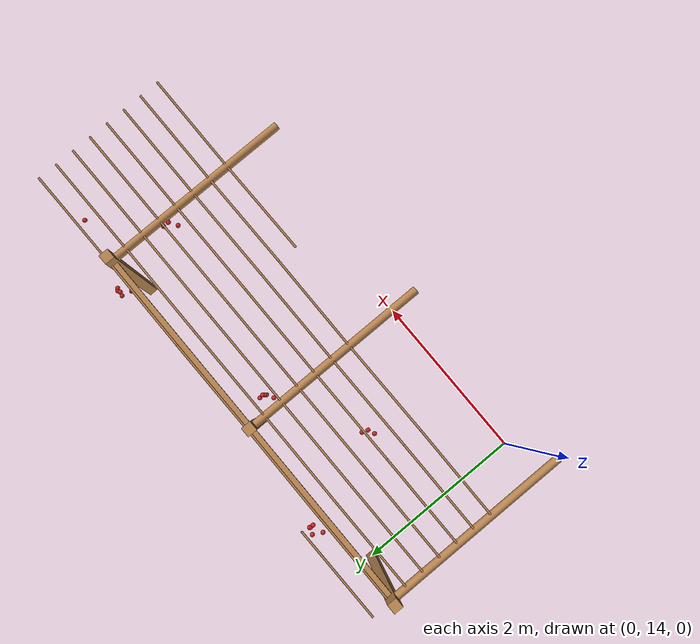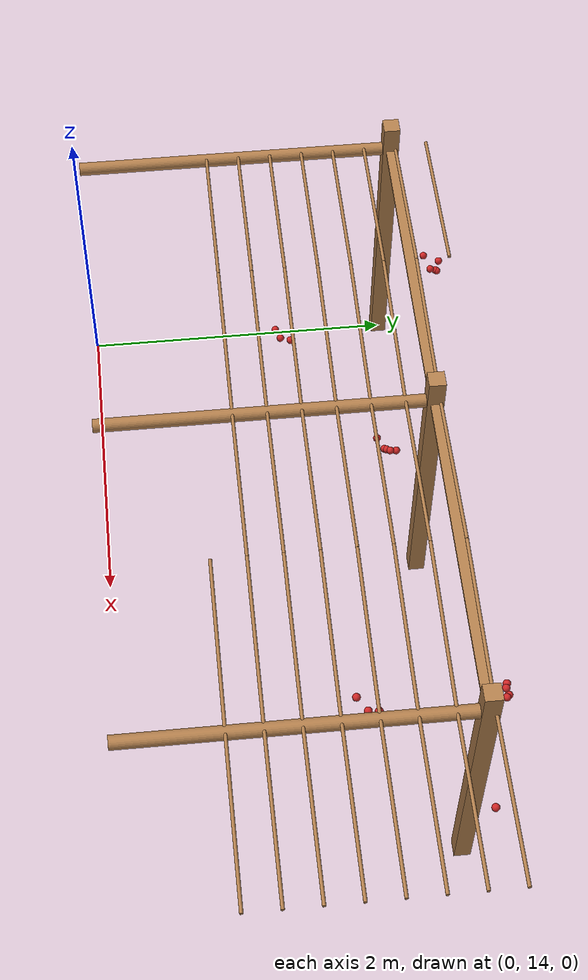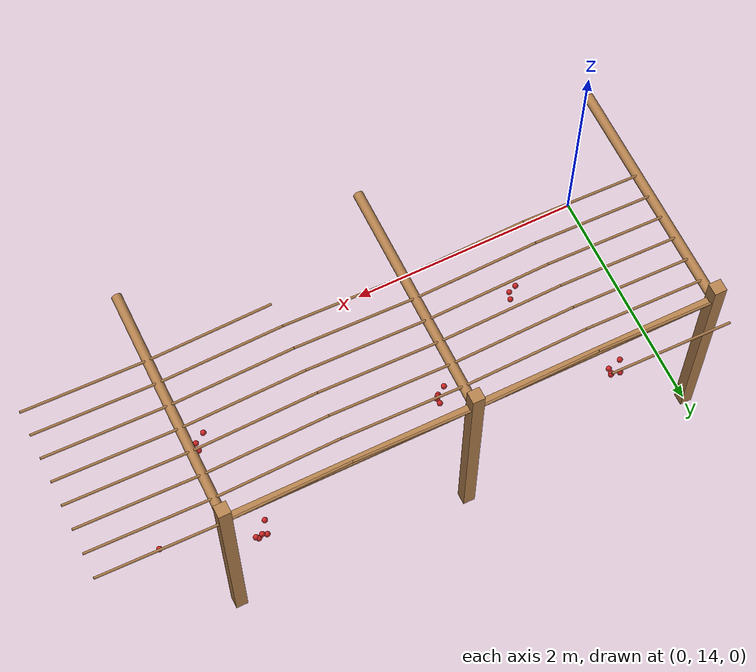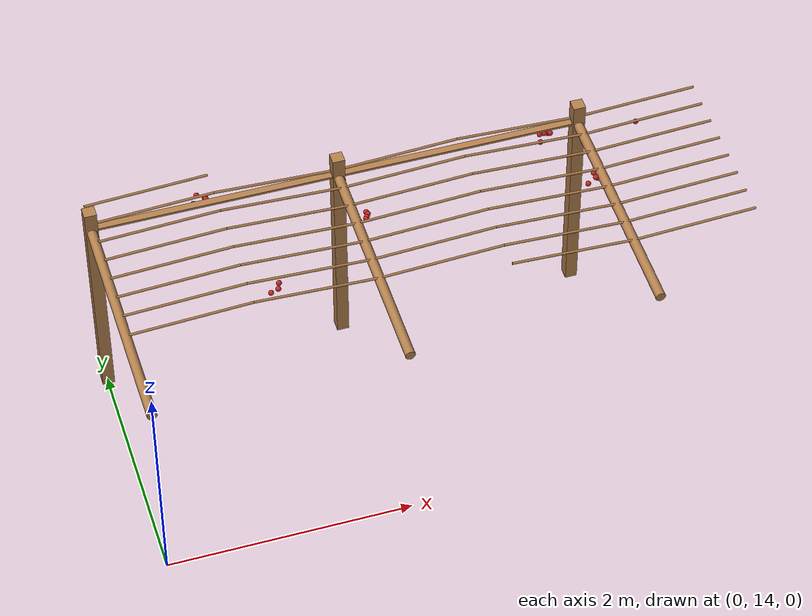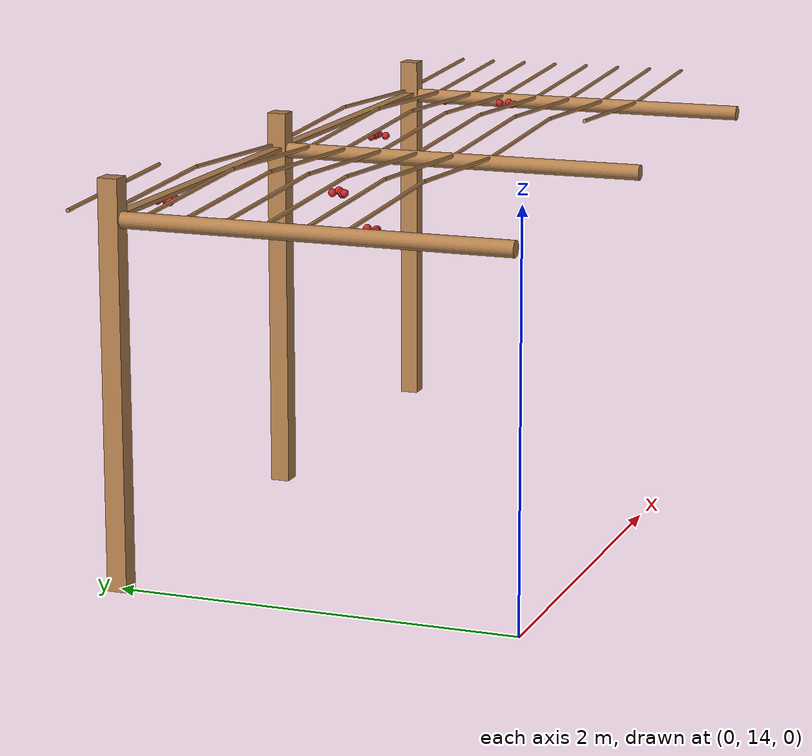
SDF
<sdf version="1.4">
 <model name="pergola">
  <include><name>post_8</name><pose>0.0 16.0 0 0 0 0</pose><uri>model://post</uri></include>
  <include><name>post_19</name><pose>2.0 16.0 0 0 0 0</pose><uri>model://post</uri></include>
  <include><name>post_30</name><pose>4.0 16.0 0 0 0 0</pose><uri>model://post</uri></include>
  <link name="beam_8">
   <pose>1.0 16.0 1.81 0 0 0</pose>
   <collision name="collision"><geometry><box><size>2.0 0.06 0.02</size></box></geometry></collision>
   <visual name="visual">
    <geometry><box><size>2.0 0.06 0.02</size></box></geometry>
    <material><script><name>Gazebo/Wood</name></script></material>
   </visual>
   <inertial>
    <mass>5</mass>
    <inertia>
     <ixx>0.0016666666666666668</ixx>
     <ixy>0.0</ixy>
     <ixz>0.0</ixz>
     <iyy>1.6681666666666664</iyy>
     <iyz>0.0</iyz>
     <izz>1.6668333333333332</izz>
    </inertia>
   </inertial>
  </link>
  <link name="beam_19">
   <pose>3.0 16.0 1.81 0 0 0</pose>
   <collision name="collision"><geometry><box><size>2.0 0.06 0.02</size></box></geometry></collision>
   <visual name="visual">
    <geometry><box><size>2.0 0.06 0.02</size></box></geometry>
    <material><script><name>Gazebo/Wood</name></script></material>
   </visual>
   <inertial>
    <mass>5</mass>
    <inertia>
     <ixx>0.0016666666666666668</ixx>
     <ixy>0.0</ixy>
     <ixz>0.0</ixz>
     <iyy>1.6681666666666664</iyy>
     <iyz>0.0</iyz>
     <izz>1.6668333333333332</izz>
    </inertia>
   </inertial>
  </link>
  <link name="baseBranch_7">
   <pose>0.0 15.0 1.8 1.5707963267948966 0 0</pose>
   <collision name="collision">
    <geometry><cylinder><radius>0.04</radius><length>1.94</length></cylinder></geometry>
   </collision>
   <visual name="visual">
    <geometry><cylinder><radius>0.04</radius><length>1.94</length></cylinder></geometry>
    <material><script><name>Gazebo/WoodFloor</name></script></material>
   </visual>
   <inertial>
    <mass>10</mass>
    <inertia>
     <ixx>3.140333333333333</ixx>
     <ixy>0.0</ixy>
     <ixz>0.0</ixz>
     <iyy>3.140333333333333</iyy>
     <iyz>0.0</iyz>
     <izz>0.008</izz>
    </inertia>
   </inertial>
  </link>
  <link name="baseBranch_17">
   <pose>2.0 15.0 1.8 1.5707963267948966 0 0</pose>
   <collision name="collision">
    <geometry><cylinder><radius>0.04</radius><length>1.94</length></cylinder></geometry>
   </collision>
   <visual name="visual">
    <geometry><cylinder><radius>0.04</radius><length>1.94</length></cylinder></geometry>
    <material><script><name>Gazebo/WoodFloor</name></script></material>
   </visual>
   <inertial>
    <mass>10</mass>
    <inertia>
     <ixx>3.140333333333333</ixx>
     <ixy>0.0</ixy>
     <ixz>0.0</ixz>
     <iyy>3.140333333333333</iyy>
     <iyz>0.0</iyz>
     <izz>0.008</izz>
    </inertia>
   </inertial>
  </link>
  <link name="baseBranch_27">
   <pose>4.0 15.0 1.8 1.5707963267948966 0 0</pose>
   <collision name="collision">
    <geometry><cylinder><radius>0.04</radius><length>1.94</length></cylinder></geometry>
   </collision>
   <visual name="visual">
    <geometry><cylinder><radius>0.04</radius><length>1.94</length></cylinder></geometry>
    <material><script><name>Gazebo/WoodFloor</name></script></material>
   </visual>
   <inertial>
    <mass>10</mass>
    <inertia>
     <ixx>3.140333333333333</ixx>
     <ixy>0.0</ixy>
     <ixz>0.0</ixz>
     <iyy>3.140333333333333</iyy>
     <iyz>0.0</iyz>
     <izz>0.008</izz>
    </inertia>
   </inertial>
  </link>
  <link name="vine_148">
   <pose>0.5 14.83 1.85 0 1.5208379310729538 0</pose>
   <collision name="collision">
    <geometry><cylinder><radius>0.01</radius><length>1.0012492197250393</length></cylinder></geometry>
   </collision>
   <visual name="visual">
    <geometry><cylinder><radius>0.01</radius><length>1.0012492197250393</length></cylinder></geometry>
    <material><script><name>Gazebo/WoodFloor</name></script></material>
   </visual>
   <inertial>
    <mass>5</mass>
    <inertia>
     <ixx>0.41783333333333345</ixx>
     <ixy>0.0</ixy>
     <ixz>0.0</ixz>
     <iyy>0.41783333333333345</iyy>
     <iyz>0.0</iyz>
     <izz>0.00025</izz>
    </inertia>
   </inertial>
  </link>
  <link name="vine_149">
   <pose>1.5 14.83 1.85 0 -1.5208379310729538 0</pose>
   <collision name="collision">
    <geometry><cylinder><radius>0.01</radius><length>1.0012492197250393</length></cylinder></geometry>
   </collision>
   <visual name="visual">
    <geometry><cylinder><radius>0.01</radius><length>1.0012492197250393</length></cylinder></geometry>
    <material><script><name>Gazebo/WoodFloor</name></script></material>
   </visual>
   <inertial>
    <mass>5</mass>
    <inertia>
     <ixx>0.41783333333333345</ixx>
     <ixy>0.0</ixy>
     <ixz>0.0</ixz>
     <iyy>0.41783333333333345</iyy>
     <iyz>0.0</iyz>
     <izz>0.00025</izz>
    </inertia>
   </inertial>
  </link>
  <link name="vine_150">
   <pose>0.5 15.03 1.85 0 1.5208379310729538 0</pose>
   <collision name="collision">
    <geometry><cylinder><radius>0.01</radius><length>1.0012492197250393</length></cylinder></geometry>
   </collision>
   <visual name="visual">
    <geometry><cylinder><radius>0.01</radius><length>1.0012492197250393</length></cylinder></geometry>
    <material><script><name>Gazebo/WoodFloor</name></script></material>
   </visual>
   <inertial>
    <mass>5</mass>
    <inertia>
     <ixx>0.41783333333333345</ixx>
     <ixy>0.0</ixy>
     <ixz>0.0</ixz>
     <iyy>0.41783333333333345</iyy>
     <iyz>0.0</iyz>
     <izz>0.00025</izz>
    </inertia>
   </inertial>
  </link>
  <link name="vine_151">
   <pose>1.5 15.03 1.85 0 -1.5208379310729538 0</pose>
   <collision name="collision">
    <geometry><cylinder><radius>0.01</radius><length>1.0012492197250393</length></cylinder></geometry>
   </collision>
   <visual name="visual">
    <geometry><cylinder><radius>0.01</radius><length>1.0012492197250393</length></cylinder></geometry>
    <material><script><name>Gazebo/WoodFloor</name></script></material>
   </visual>
   <inertial>
    <mass>5</mass>
    <inertia>
     <ixx>0.41783333333333345</ixx>
     <ixy>0.0</ixy>
     <ixz>0.0</ixz>
     <iyy>0.41783333333333345</iyy>
     <iyz>0.0</iyz>
     <izz>0.00025</izz>
    </inertia>
   </inertial>
  </link>
  <link name="vine_152">
   <pose>0.5 15.23 1.85 0 1.5208379310729538 0</pose>
   <collision name="collision">
    <geometry><cylinder><radius>0.01</radius><length>1.0012492197250393</length></cylinder></geometry>
   </collision>
   <visual name="visual">
    <geometry><cylinder><radius>0.01</radius><length>1.0012492197250393</length></cylinder></geometry>
    <material><script><name>Gazebo/WoodFloor</name></script></material>
   </visual>
   <inertial>
    <mass>5</mass>
    <inertia>
     <ixx>0.41783333333333345</ixx>
     <ixy>0.0</ixy>
     <ixz>0.0</ixz>
     <iyy>0.41783333333333345</iyy>
     <iyz>0.0</iyz>
     <izz>0.00025</izz>
    </inertia>
   </inertial>
  </link>
  <link name="vine_153">
   <pose>1.5 15.23 1.85 0 -1.5208379310729538 0</pose>
   <collision name="collision">
    <geometry><cylinder><radius>0.01</radius><length>1.0012492197250393</length></cylinder></geometry>
   </collision>
   <visual name="visual">
    <geometry><cylinder><radius>0.01</radius><length>1.0012492197250393</length></cylinder></geometry>
    <material><script><name>Gazebo/WoodFloor</name></script></material>
   </visual>
   <inertial>
    <mass>5</mass>
    <inertia>
     <ixx>0.41783333333333345</ixx>
     <ixy>0.0</ixy>
     <ixz>0.0</ixz>
     <iyy>0.41783333333333345</iyy>
     <iyz>0.0</iyz>
     <izz>0.00025</izz>
    </inertia>
   </inertial>
  </link>
  <link name="vine_154">
   <pose>0.5 15.43 1.85 0 1.5208379310729538 0</pose>
   <collision name="collision">
    <geometry><cylinder><radius>0.01</radius><length>1.0012492197250393</length></cylinder></geometry>
   </collision>
   <visual name="visual">
    <geometry><cylinder><radius>0.01</radius><length>1.0012492197250393</length></cylinder></geometry>
    <material><script><name>Gazebo/WoodFloor</name></script></material>
   </visual>
   <inertial>
    <mass>5</mass>
    <inertia>
     <ixx>0.41783333333333345</ixx>
     <ixy>0.0</ixy>
     <ixz>0.0</ixz>
     <iyy>0.41783333333333345</iyy>
     <iyz>0.0</iyz>
     <izz>0.00025</izz>
    </inertia>
   </inertial>
  </link>
  <link name="vine_155">
   <pose>1.5 15.43 1.85 0 -1.5208379310729538 0</pose>
   <collision name="collision">
    <geometry><cylinder><radius>0.01</radius><length>1.0012492197250393</length></cylinder></geometry>
   </collision>
   <visual name="visual">
    <geometry><cylinder><radius>0.01</radius><length>1.0012492197250393</length></cylinder></geometry>
    <material><script><name>Gazebo/WoodFloor</name></script></material>
   </visual>
   <inertial>
    <mass>5</mass>
    <inertia>
     <ixx>0.41783333333333345</ixx>
     <ixy>0.0</ixy>
     <ixz>0.0</ixz>
     <iyy>0.41783333333333345</iyy>
     <iyz>0.0</iyz>
     <izz>0.00025</izz>
    </inertia>
   </inertial>
  </link>
  <link name="vine_156">
   <pose>0.5 15.63 1.85 0 1.5208379310729538 0</pose>
   <collision name="collision">
    <geometry><cylinder><radius>0.01</radius><length>1.0012492197250393</length></cylinder></geometry>
   </collision>
   <visual name="visual">
    <geometry><cylinder><radius>0.01</radius><length>1.0012492197250393</length></cylinder></geometry>
    <material><script><name>Gazebo/WoodFloor</name></script></material>
   </visual>
   <inertial>
    <mass>5</mass>
    <inertia>
     <ixx>0.41783333333333345</ixx>
     <ixy>0.0</ixy>
     <ixz>0.0</ixz>
     <iyy>0.41783333333333345</iyy>
     <iyz>0.0</iyz>
     <izz>0.00025</izz>
    </inertia>
   </inertial>
  </link>
  <link name="vine_157">
   <pose>1.5 15.63 1.85 0 -1.5208379310729538 0</pose>
   <collision name="collision">
    <geometry><cylinder><radius>0.01</radius><length>1.0012492197250393</length></cylinder></geometry>
   </collision>
   <visual name="visual">
    <geometry><cylinder><radius>0.01</radius><length>1.0012492197250393</length></cylinder></geometry>
    <material><script><name>Gazebo/WoodFloor</name></script></material>
   </visual>
   <inertial>
    <mass>5</mass>
    <inertia>
     <ixx>0.41783333333333345</ixx>
     <ixy>0.0</ixy>
     <ixz>0.0</ixz>
     <iyy>0.41783333333333345</iyy>
     <iyz>0.0</iyz>
     <izz>0.00025</izz>
    </inertia>
   </inertial>
  </link>
  <link name="vine_158">
   <pose>0.5 15.83 1.85 0 1.5208379310729538 0</pose>
   <collision name="collision">
    <geometry><cylinder><radius>0.01</radius><length>1.0012492197250393</length></cylinder></geometry>
   </collision>
   <visual name="visual">
    <geometry><cylinder><radius>0.01</radius><length>1.0012492197250393</length></cylinder></geometry>
    <material><script><name>Gazebo/WoodFloor</name></script></material>
   </visual>
   <inertial>
    <mass>5</mass>
    <inertia>
     <ixx>0.41783333333333345</ixx>
     <ixy>0.0</ixy>
     <ixz>0.0</ixz>
     <iyy>0.41783333333333345</iyy>
     <iyz>0.0</iyz>
     <izz>0.00025</izz>
    </inertia>
   </inertial>
  </link>
  <link name="vine_159">
   <pose>1.5 15.83 1.85 0 -1.5208379310729538 0</pose>
   <collision name="collision">
    <geometry><cylinder><radius>0.01</radius><length>1.0012492197250393</length></cylinder></geometry>
   </collision>
   <visual name="visual">
    <geometry><cylinder><radius>0.01</radius><length>1.0012492197250393</length></cylinder></geometry>
    <material><script><name>Gazebo/WoodFloor</name></script></material>
   </visual>
   <inertial>
    <mass>5</mass>
    <inertia>
     <ixx>0.41783333333333345</ixx>
     <ixy>0.0</ixy>
     <ixz>0.0</ixz>
     <iyy>0.41783333333333345</iyy>
     <iyz>0.0</iyz>
     <izz>0.00025</izz>
    </inertia>
   </inertial>
  </link>
  <link name="vine_160">
   <pose>0.5 16.03 1.85 0 1.5208379310729538 0</pose>
   <collision name="collision">
    <geometry><cylinder><radius>0.01</radius><length>1.0012492197250393</length></cylinder></geometry>
   </collision>
   <visual name="visual">
    <geometry><cylinder><radius>0.01</radius><length>1.0012492197250393</length></cylinder></geometry>
    <material><script><name>Gazebo/WoodFloor</name></script></material>
   </visual>
   <inertial>
    <mass>5</mass>
    <inertia>
     <ixx>0.41783333333333345</ixx>
     <ixy>0.0</ixy>
     <ixz>0.0</ixz>
     <iyy>0.41783333333333345</iyy>
     <iyz>0.0</iyz>
     <izz>0.00025</izz>
    </inertia>
   </inertial>
  </link>
  <link name="vine_161">
   <pose>1.5 16.03 1.85 0 -1.5208379310729538 0</pose>
   <collision name="collision">
    <geometry><cylinder><radius>0.01</radius><length>1.0012492197250393</length></cylinder></geometry>
   </collision>
   <visual name="visual">
    <geometry><cylinder><radius>0.01</radius><length>1.0012492197250393</length></cylinder></geometry>
    <material><script><name>Gazebo/WoodFloor</name></script></material>
   </visual>
   <inertial>
    <mass>5</mass>
    <inertia>
     <ixx>0.41783333333333345</ixx>
     <ixy>0.0</ixy>
     <ixz>0.0</ixz>
     <iyy>0.41783333333333345</iyy>
     <iyz>0.0</iyz>
     <izz>0.00025</izz>
    </inertia>
   </inertial>
  </link>
  <link name="vine_162">
   <pose>0.5 16.23 1.85 0 1.5208379310729538 0</pose>
   <collision name="collision">
    <geometry><cylinder><radius>0.01</radius><length>1.0012492197250393</length></cylinder></geometry>
   </collision>
   <visual name="visual">
    <geometry><cylinder><radius>0.01</radius><length>1.0012492197250393</length></cylinder></geometry>
    <material><script><name>Gazebo/WoodFloor</name></script></material>
   </visual>
   <inertial>
    <mass>5</mass>
    <inertia>
     <ixx>0.41783333333333345</ixx>
     <ixy>0.0</ixy>
     <ixz>0.0</ixz>
     <iyy>0.41783333333333345</iyy>
     <iyz>0.0</iyz>
     <izz>0.00025</izz>
    </inertia>
   </inertial>
  </link>
  <link name="vine_347">
   <pose>3.5 14.63 1.85 0 -1.5208379310729538 0</pose>
   <collision name="collision">
    <geometry><cylinder><radius>0.01</radius><length>1.0012492197250393</length></cylinder></geometry>
   </collision>
   <visual name="visual">
    <geometry><cylinder><radius>0.01</radius><length>1.0012492197250393</length></cylinder></geometry>
    <material><script><name>Gazebo/WoodFloor</name></script></material>
   </visual>
   <inertial>
    <mass>5</mass>
    <inertia>
     <ixx>0.41783333333333345</ixx>
     <ixy>0.0</ixy>
     <ixz>0.0</ixz>
     <iyy>0.41783333333333345</iyy>
     <iyz>0.0</iyz>
     <izz>0.00025</izz>
    </inertia>
   </inertial>
  </link>
  <link name="vine_348">
   <pose>2.5 14.83 1.85 0 1.5208379310729538 0</pose>
   <collision name="collision">
    <geometry><cylinder><radius>0.01</radius><length>1.0012492197250393</length></cylinder></geometry>
   </collision>
   <visual name="visual">
    <geometry><cylinder><radius>0.01</radius><length>1.0012492197250393</length></cylinder></geometry>
    <material><script><name>Gazebo/WoodFloor</name></script></material>
   </visual>
   <inertial>
    <mass>5</mass>
    <inertia>
     <ixx>0.41783333333333345</ixx>
     <ixy>0.0</ixy>
     <ixz>0.0</ixz>
     <iyy>0.41783333333333345</iyy>
     <iyz>0.0</iyz>
     <izz>0.00025</izz>
    </inertia>
   </inertial>
  </link>
  <link name="vine_349">
   <pose>3.5 14.83 1.85 0 -1.5208379310729538 0</pose>
   <collision name="collision">
    <geometry><cylinder><radius>0.01</radius><length>1.0012492197250393</length></cylinder></geometry>
   </collision>
   <visual name="visual">
    <geometry><cylinder><radius>0.01</radius><length>1.0012492197250393</length></cylinder></geometry>
    <material><script><name>Gazebo/WoodFloor</name></script></material>
   </visual>
   <inertial>
    <mass>5</mass>
    <inertia>
     <ixx>0.41783333333333345</ixx>
     <ixy>0.0</ixy>
     <ixz>0.0</ixz>
     <iyy>0.41783333333333345</iyy>
     <iyz>0.0</iyz>
     <izz>0.00025</izz>
    </inertia>
   </inertial>
  </link>
  <link name="vine_350">
   <pose>2.5 15.03 1.85 0 1.5208379310729538 0</pose>
   <collision name="collision">
    <geometry><cylinder><radius>0.01</radius><length>1.0012492197250393</length></cylinder></geometry>
   </collision>
   <visual name="visual">
    <geometry><cylinder><radius>0.01</radius><length>1.0012492197250393</length></cylinder></geometry>
    <material><script><name>Gazebo/WoodFloor</name></script></material>
   </visual>
   <inertial>
    <mass>5</mass>
    <inertia>
     <ixx>0.41783333333333345</ixx>
     <ixy>0.0</ixy>
     <ixz>0.0</ixz>
     <iyy>0.41783333333333345</iyy>
     <iyz>0.0</iyz>
     <izz>0.00025</izz>
    </inertia>
   </inertial>
  </link>
  <link name="vine_351">
   <pose>3.5 15.03 1.85 0 -1.5208379310729538 0</pose>
   <collision name="collision">
    <geometry><cylinder><radius>0.01</radius><length>1.0012492197250393</length></cylinder></geometry>
   </collision>
   <visual name="visual">
    <geometry><cylinder><radius>0.01</radius><length>1.0012492197250393</length></cylinder></geometry>
    <material><script><name>Gazebo/WoodFloor</name></script></material>
   </visual>
   <inertial>
    <mass>5</mass>
    <inertia>
     <ixx>0.41783333333333345</ixx>
     <ixy>0.0</ixy>
     <ixz>0.0</ixz>
     <iyy>0.41783333333333345</iyy>
     <iyz>0.0</iyz>
     <izz>0.00025</izz>
    </inertia>
   </inertial>
  </link>
  <link name="vine_352">
   <pose>2.5 15.23 1.85 0 1.5208379310729538 0</pose>
   <collision name="collision">
    <geometry><cylinder><radius>0.01</radius><length>1.0012492197250393</length></cylinder></geometry>
   </collision>
   <visual name="visual">
    <geometry><cylinder><radius>0.01</radius><length>1.0012492197250393</length></cylinder></geometry>
    <material><script><name>Gazebo/WoodFloor</name></script></material>
   </visual>
   <inertial>
    <mass>5</mass>
    <inertia>
     <ixx>0.41783333333333345</ixx>
     <ixy>0.0</ixy>
     <ixz>0.0</ixz>
     <iyy>0.41783333333333345</iyy>
     <iyz>0.0</iyz>
     <izz>0.00025</izz>
    </inertia>
   </inertial>
  </link>
  <link name="vine_353">
   <pose>3.5 15.23 1.85 0 -1.5208379310729538 0</pose>
   <collision name="collision">
    <geometry><cylinder><radius>0.01</radius><length>1.0012492197250393</length></cylinder></geometry>
   </collision>
   <visual name="visual">
    <geometry><cylinder><radius>0.01</radius><length>1.0012492197250393</length></cylinder></geometry>
    <material><script><name>Gazebo/WoodFloor</name></script></material>
   </visual>
   <inertial>
    <mass>5</mass>
    <inertia>
     <ixx>0.41783333333333345</ixx>
     <ixy>0.0</ixy>
     <ixz>0.0</ixz>
     <iyy>0.41783333333333345</iyy>
     <iyz>0.0</iyz>
     <izz>0.00025</izz>
    </inertia>
   </inertial>
  </link>
  <link name="vine_354">
   <pose>2.5 15.43 1.85 0 1.5208379310729538 0</pose>
   <collision name="collision">
    <geometry><cylinder><radius>0.01</radius><length>1.0012492197250393</length></cylinder></geometry>
   </collision>
   <visual name="visual">
    <geometry><cylinder><radius>0.01</radius><length>1.0012492197250393</length></cylinder></geometry>
    <material><script><name>Gazebo/WoodFloor</name></script></material>
   </visual>
   <inertial>
    <mass>5</mass>
    <inertia>
     <ixx>0.41783333333333345</ixx>
     <ixy>0.0</ixy>
     <ixz>0.0</ixz>
     <iyy>0.41783333333333345</iyy>
     <iyz>0.0</iyz>
     <izz>0.00025</izz>
    </inertia>
   </inertial>
  </link>
  <link name="vine_355">
   <pose>3.5 15.43 1.85 0 -1.5208379310729538 0</pose>
   <collision name="collision">
    <geometry><cylinder><radius>0.01</radius><length>1.0012492197250393</length></cylinder></geometry>
   </collision>
   <visual name="visual">
    <geometry><cylinder><radius>0.01</radius><length>1.0012492197250393</length></cylinder></geometry>
    <material><script><name>Gazebo/WoodFloor</name></script></material>
   </visual>
   <inertial>
    <mass>5</mass>
    <inertia>
     <ixx>0.41783333333333345</ixx>
     <ixy>0.0</ixy>
     <ixz>0.0</ixz>
     <iyy>0.41783333333333345</iyy>
     <iyz>0.0</iyz>
     <izz>0.00025</izz>
    </inertia>
   </inertial>
  </link>
  <link name="vine_356">
   <pose>2.5 15.63 1.85 0 1.5208379310729538 0</pose>
   <collision name="collision">
    <geometry><cylinder><radius>0.01</radius><length>1.0012492197250393</length></cylinder></geometry>
   </collision>
   <visual name="visual">
    <geometry><cylinder><radius>0.01</radius><length>1.0012492197250393</length></cylinder></geometry>
    <material><script><name>Gazebo/WoodFloor</name></script></material>
   </visual>
   <inertial>
    <mass>5</mass>
    <inertia>
     <ixx>0.41783333333333345</ixx>
     <ixy>0.0</ixy>
     <ixz>0.0</ixz>
     <iyy>0.41783333333333345</iyy>
     <iyz>0.0</iyz>
     <izz>0.00025</izz>
    </inertia>
   </inertial>
  </link>
  <link name="vine_357">
   <pose>3.5 15.63 1.85 0 -1.5208379310729538 0</pose>
   <collision name="collision">
    <geometry><cylinder><radius>0.01</radius><length>1.0012492197250393</length></cylinder></geometry>
   </collision>
   <visual name="visual">
    <geometry><cylinder><radius>0.01</radius><length>1.0012492197250393</length></cylinder></geometry>
    <material><script><name>Gazebo/WoodFloor</name></script></material>
   </visual>
   <inertial>
    <mass>5</mass>
    <inertia>
     <ixx>0.41783333333333345</ixx>
     <ixy>0.0</ixy>
     <ixz>0.0</ixz>
     <iyy>0.41783333333333345</iyy>
     <iyz>0.0</iyz>
     <izz>0.00025</izz>
    </inertia>
   </inertial>
  </link>
  <link name="vine_358">
   <pose>2.5 15.83 1.85 0 1.5208379310729538 0</pose>
   <collision name="collision">
    <geometry><cylinder><radius>0.01</radius><length>1.0012492197250393</length></cylinder></geometry>
   </collision>
   <visual name="visual">
    <geometry><cylinder><radius>0.01</radius><length>1.0012492197250393</length></cylinder></geometry>
    <material><script><name>Gazebo/WoodFloor</name></script></material>
   </visual>
   <inertial>
    <mass>5</mass>
    <inertia>
     <ixx>0.41783333333333345</ixx>
     <ixy>0.0</ixy>
     <ixz>0.0</ixz>
     <iyy>0.41783333333333345</iyy>
     <iyz>0.0</iyz>
     <izz>0.00025</izz>
    </inertia>
   </inertial>
  </link>
  <link name="vine_359">
   <pose>3.5 15.83 1.85 0 -1.5208379310729538 0</pose>
   <collision name="collision">
    <geometry><cylinder><radius>0.01</radius><length>1.0012492197250393</length></cylinder></geometry>
   </collision>
   <visual name="visual">
    <geometry><cylinder><radius>0.01</radius><length>1.0012492197250393</length></cylinder></geometry>
    <material><script><name>Gazebo/WoodFloor</name></script></material>
   </visual>
   <inertial>
    <mass>5</mass>
    <inertia>
     <ixx>0.41783333333333345</ixx>
     <ixy>0.0</ixy>
     <ixz>0.0</ixz>
     <iyy>0.41783333333333345</iyy>
     <iyz>0.0</iyz>
     <izz>0.00025</izz>
    </inertia>
   </inertial>
  </link>
  <link name="vine_360">
   <pose>2.5 16.03 1.85 0 1.5208379310729538 0</pose>
   <collision name="collision">
    <geometry><cylinder><radius>0.01</radius><length>1.0012492197250393</length></cylinder></geometry>
   </collision>
   <visual name="visual">
    <geometry><cylinder><radius>0.01</radius><length>1.0012492197250393</length></cylinder></geometry>
    <material><script><name>Gazebo/WoodFloor</name></script></material>
   </visual>
   <inertial>
    <mass>5</mass>
    <inertia>
     <ixx>0.41783333333333345</ixx>
     <ixy>0.0</ixy>
     <ixz>0.0</ixz>
     <iyy>0.41783333333333345</iyy>
     <iyz>0.0</iyz>
     <izz>0.00025</izz>
    </inertia>
   </inertial>
  </link>
  <link name="vine_361">
   <pose>3.5 16.03 1.85 0 -1.5208379310729538 0</pose>
   <collision name="collision">
    <geometry><cylinder><radius>0.01</radius><length>1.0012492197250393</length></cylinder></geometry>
   </collision>
   <visual name="visual">
    <geometry><cylinder><radius>0.01</radius><length>1.0012492197250393</length></cylinder></geometry>
    <material><script><name>Gazebo/WoodFloor</name></script></material>
   </visual>
   <inertial>
    <mass>5</mass>
    <inertia>
     <ixx>0.41783333333333345</ixx>
     <ixy>0.0</ixy>
     <ixz>0.0</ixz>
     <iyy>0.41783333333333345</iyy>
     <iyz>0.0</iyz>
     <izz>0.00025</izz>
    </inertia>
   </inertial>
  </link>
  <link name="vine_546">
   <pose>4.5 14.63 1.85 0 1.5208379310729538 0</pose>
   <collision name="collision">
    <geometry><cylinder><radius>0.01</radius><length>1.0012492197250393</length></cylinder></geometry>
   </collision>
   <visual name="visual">
    <geometry><cylinder><radius>0.01</radius><length>1.0012492197250393</length></cylinder></geometry>
    <material><script><name>Gazebo/WoodFloor</name></script></material>
   </visual>
   <inertial>
    <mass>5</mass>
    <inertia>
     <ixx>0.41783333333333345</ixx>
     <ixy>0.0</ixy>
     <ixz>0.0</ixz>
     <iyy>0.41783333333333345</iyy>
     <iyz>0.0</iyz>
     <izz>0.00025</izz>
    </inertia>
   </inertial>
  </link>
  <link name="vine_548">
   <pose>4.5 14.83 1.85 0 1.5208379310729538 0</pose>
   <collision name="collision">
    <geometry><cylinder><radius>0.01</radius><length>1.0012492197250393</length></cylinder></geometry>
   </collision>
   <visual name="visual">
    <geometry><cylinder><radius>0.01</radius><length>1.0012492197250393</length></cylinder></geometry>
    <material><script><name>Gazebo/WoodFloor</name></script></material>
   </visual>
   <inertial>
    <mass>5</mass>
    <inertia>
     <ixx>0.41783333333333345</ixx>
     <ixy>0.0</ixy>
     <ixz>0.0</ixz>
     <iyy>0.41783333333333345</iyy>
     <iyz>0.0</iyz>
     <izz>0.00025</izz>
    </inertia>
   </inertial>
  </link>
  <link name="vine_550">
   <pose>4.5 15.03 1.85 0 1.5208379310729538 0</pose>
   <collision name="collision">
    <geometry><cylinder><radius>0.01</radius><length>1.0012492197250393</length></cylinder></geometry>
   </collision>
   <visual name="visual">
    <geometry><cylinder><radius>0.01</radius><length>1.0012492197250393</length></cylinder></geometry>
    <material><script><name>Gazebo/WoodFloor</name></script></material>
   </visual>
   <inertial>
    <mass>5</mass>
    <inertia>
     <ixx>0.41783333333333345</ixx>
     <ixy>0.0</ixy>
     <ixz>0.0</ixz>
     <iyy>0.41783333333333345</iyy>
     <iyz>0.0</iyz>
     <izz>0.00025</izz>
    </inertia>
   </inertial>
  </link>
  <link name="vine_552">
   <pose>4.5 15.23 1.85 0 1.5208379310729538 0</pose>
   <collision name="collision">
    <geometry><cylinder><radius>0.01</radius><length>1.0012492197250393</length></cylinder></geometry>
   </collision>
   <visual name="visual">
    <geometry><cylinder><radius>0.01</radius><length>1.0012492197250393</length></cylinder></geometry>
    <material><script><name>Gazebo/WoodFloor</name></script></material>
   </visual>
   <inertial>
    <mass>5</mass>
    <inertia>
     <ixx>0.41783333333333345</ixx>
     <ixy>0.0</ixy>
     <ixz>0.0</ixz>
     <iyy>0.41783333333333345</iyy>
     <iyz>0.0</iyz>
     <izz>0.00025</izz>
    </inertia>
   </inertial>
  </link>
  <link name="vine_554">
   <pose>4.5 15.43 1.85 0 1.5208379310729538 0</pose>
   <collision name="collision">
    <geometry><cylinder><radius>0.01</radius><length>1.0012492197250393</length></cylinder></geometry>
   </collision>
   <visual name="visual">
    <geometry><cylinder><radius>0.01</radius><length>1.0012492197250393</length></cylinder></geometry>
    <material><script><name>Gazebo/WoodFloor</name></script></material>
   </visual>
   <inertial>
    <mass>5</mass>
    <inertia>
     <ixx>0.41783333333333345</ixx>
     <ixy>0.0</ixy>
     <ixz>0.0</ixz>
     <iyy>0.41783333333333345</iyy>
     <iyz>0.0</iyz>
     <izz>0.00025</izz>
    </inertia>
   </inertial>
  </link>
  <link name="vine_556">
   <pose>4.5 15.63 1.85 0 1.5208379310729538 0</pose>
   <collision name="collision">
    <geometry><cylinder><radius>0.01</radius><length>1.0012492197250393</length></cylinder></geometry>
   </collision>
   <visual name="visual">
    <geometry><cylinder><radius>0.01</radius><length>1.0012492197250393</length></cylinder></geometry>
    <material><script><name>Gazebo/WoodFloor</name></script></material>
   </visual>
   <inertial>
    <mass>5</mass>
    <inertia>
     <ixx>0.41783333333333345</ixx>
     <ixy>0.0</ixy>
     <ixz>0.0</ixz>
     <iyy>0.41783333333333345</iyy>
     <iyz>0.0</iyz>
     <izz>0.00025</izz>
    </inertia>
   </inertial>
  </link>
  <link name="vine_558">
   <pose>4.5 15.83 1.85 0 1.5208379310729538 0</pose>
   <collision name="collision">
    <geometry><cylinder><radius>0.01</radius><length>1.0012492197250393</length></cylinder></geometry>
   </collision>
   <visual name="visual">
    <geometry><cylinder><radius>0.01</radius><length>1.0012492197250393</length></cylinder></geometry>
    <material><script><name>Gazebo/WoodFloor</name></script></material>
   </visual>
   <inertial>
    <mass>5</mass>
    <inertia>
     <ixx>0.41783333333333345</ixx>
     <ixy>0.0</ixy>
     <ixz>0.0</ixz>
     <iyy>0.41783333333333345</iyy>
     <iyz>0.0</iyz>
     <izz>0.00025</izz>
    </inertia>
   </inertial>
  </link>
  <link name="vine_560">
   <pose>4.5 16.03 1.85 0 1.5208379310729538 0</pose>
   <collision name="collision">
    <geometry><cylinder><radius>0.01</radius><length>1.0012492197250393</length></cylinder></geometry>
   </collision>
   <visual name="visual">
    <geometry><cylinder><radius>0.01</radius><length>1.0012492197250393</length></cylinder></geometry>
    <material><script><name>Gazebo/WoodFloor</name></script></material>
   </visual>
   <inertial>
    <mass>5</mass>
    <inertia>
     <ixx>0.41783333333333345</ixx>
     <ixy>0.0</ixy>
     <ixz>0.0</ixz>
     <iyy>0.41783333333333345</iyy>
     <iyz>0.0</iyz>
     <izz>0.00025</izz>
    </inertia>
   </inertial>
  </link>
  <link name="fruit_93">
   <pose>3.8626252006165784 15.325108925695462 1.8009776581817643 0 0 0</pose>
   <collision name="fruit_collision_93"><geometry><sphere><radius>0.022</radius></sphere></geometry></collision>
   <visual name="visual">
    <geometry><sphere><radius>0.022</radius></sphere></geometry>
    <material><script><name>Gazebo/Red</name></script></material>
   </visual>
   <inertial>
    <mass>0.05</mass>
    <inertia>
     <ixx>9.679999999999999e-06</ixx>
     <ixy>0.0</ixy>
     <ixz>0.0</ixz>
     <iyy>9.679999999999999e-06</iyy>
     <iyz>0.0</iyz>
     <izz>9.679999999999999e-06</izz>
    </inertia>
   </inertial>
   <sensor name="fruit_contact_93" type="contact">
    <contact><collision>fruit_collision_93</collision></contact>
   </sensor>
  </link>
  <link name="fruit_96">
   <pose>0.8469449774084533 16.10257006685429 1.7218788037905775 0 0 0</pose>
   <collision name="fruit_collision_96"><geometry><sphere><radius>0.022</radius></sphere></geometry></collision>
   <visual name="visual">
    <geometry><sphere><radius>0.022</radius></sphere></geometry>
    <material><script><name>Gazebo/Red</name></script></material>
   </visual>
   <inertial>
    <mass>0.05</mass>
    <inertia>
     <ixx>9.679999999999999e-06</ixx>
     <ixy>0.0</ixy>
     <ixz>0.0</ixz>
     <iyy>9.679999999999999e-06</iyy>
     <iyz>0.0</iyz>
     <izz>9.679999999999999e-06</izz>
    </inertia>
   </inertial>
   <sensor name="fruit_contact_96" type="contact">
    <contact><collision>fruit_collision_96</collision></contact>
   </sensor>
  </link>
  <link name="fruit_118">
   <pose>4.493254296528576 15.96461795188487 1.6921866342559342 0 0 0</pose>
   <collision name="fruit_collision_118"><geometry><sphere><radius>0.022</radius></sphere></geometry></collision>
   <visual name="visual">
    <geometry><sphere><radius>0.022</radius></sphere></geometry>
    <material><script><name>Gazebo/Red</name></script></material>
   </visual>
   <inertial>
    <mass>0.05</mass>
    <inertia>
     <ixx>9.679999999999999e-06</ixx>
     <ixy>0.0</ixy>
     <ixz>0.0</ixz>
     <iyy>9.679999999999999e-06</iyy>
     <iyz>0.0</iyz>
     <izz>9.679999999999999e-06</izz>
    </inertia>
   </inertial>
   <sensor name="fruit_contact_118" type="contact">
    <contact><collision>fruit_collision_118</collision></contact>
   </sensor>
  </link>
  <link name="fruit_200">
   <pose>3.718352993465998 16.057117865999828 1.5967473085118595 0 0 0</pose>
   <collision name="fruit_collision_200"><geometry><sphere><radius>0.022</radius></sphere></geometry></collision>
   <visual name="visual">
    <geometry><sphere><radius>0.022</radius></sphere></geometry>
    <material><script><name>Gazebo/Red</name></script></material>
   </visual>
   <inertial>
    <mass>0.05</mass>
    <inertia>
     <ixx>9.679999999999999e-06</ixx>
     <ixy>0.0</ixy>
     <ixz>0.0</ixz>
     <iyy>9.679999999999999e-06</iyy>
     <iyz>0.0</iyz>
     <izz>9.679999999999999e-06</izz>
    </inertia>
   </inertial>
   <sensor name="fruit_contact_200" type="contact">
    <contact><collision>fruit_collision_200</collision></contact>
   </sensor>
  </link>
  <link name="fruit_202">
   <pose>2.079693822067498 15.667042162000707 1.5720902954538194 0 0 0</pose>
   <collision name="fruit_collision_202"><geometry><sphere><radius>0.022</radius></sphere></geometry></collision>
   <visual name="visual">
    <geometry><sphere><radius>0.022</radius></sphere></geometry>
    <material><script><name>Gazebo/Red</name></script></material>
   </visual>
   <inertial>
    <mass>0.05</mass>
    <inertia>
     <ixx>9.679999999999999e-06</ixx>
     <ixy>0.0</ixy>
     <ixz>0.0</ixz>
     <iyy>9.679999999999999e-06</iyy>
     <iyz>0.0</iyz>
     <izz>9.679999999999999e-06</izz>
    </inertia>
   </inertial>
   <sensor name="fruit_contact_202" type="contact">
    <contact><collision>fruit_collision_202</collision></contact>
   </sensor>
  </link>
  <link name="fruit_341">
   <pose>1.214074893766752 15.153326367276376 1.5651653055937251 0 0 0</pose>
   <collision name="fruit_collision_341"><geometry><sphere><radius>0.022</radius></sphere></geometry></collision>
   <visual name="visual">
    <geometry><sphere><radius>0.022</radius></sphere></geometry>
    <material><script><name>Gazebo/Red</name></script></material>
   </visual>
   <inertial>
    <mass>0.05</mass>
    <inertia>
     <ixx>9.679999999999999e-06</ixx>
     <ixy>0.0</ixy>
     <ixz>0.0</ixz>
     <iyy>9.679999999999999e-06</iyy>
     <iyz>0.0</iyz>
     <izz>9.679999999999999e-06</izz>
    </inertia>
   </inertial>
   <sensor name="fruit_contact_341" type="contact">
    <contact><collision>fruit_collision_341</collision></contact>
   </sensor>
  </link>
  <link name="fruit_357">
   <pose>2.169359241988817 15.733712447535106 1.5662565516862454 0 0 0</pose>
   <collision name="fruit_collision_357"><geometry><sphere><radius>0.022</radius></sphere></geometry></collision>
   <visual name="visual">
    <geometry><sphere><radius>0.022</radius></sphere></geometry>
    <material><script><name>Gazebo/Red</name></script></material>
   </visual>
   <inertial>
    <mass>0.05</mass>
    <inertia>
     <ixx>9.679999999999999e-06</ixx>
     <ixy>0.0</ixy>
     <ixz>0.0</ixz>
     <iyy>9.679999999999999e-06</iyy>
     <iyz>0.0</iyz>
     <izz>9.679999999999999e-06</izz>
    </inertia>
   </inertial>
   <sensor name="fruit_contact_357" type="contact">
    <contact><collision>fruit_collision_357</collision></contact>
   </sensor>
  </link>
  <link name="fruit_378">
   <pose>3.779544321752017 16.146015717323056 1.5957156853791759 0 0 0</pose>
   <collision name="fruit_collision_378"><geometry><sphere><radius>0.022</radius></sphere></geometry></collision>
   <visual name="visual">
    <geometry><sphere><radius>0.022</radius></sphere></geometry>
    <material><script><name>Gazebo/Red</name></script></material>
   </visual>
   <inertial>
    <mass>0.05</mass>
    <inertia>
     <ixx>9.679999999999999e-06</ixx>
     <ixy>0.0</ixy>
     <ixz>0.0</ixz>
     <iyy>9.679999999999999e-06</iyy>
     <iyz>0.0</iyz>
     <izz>9.679999999999999e-06</izz>
    </inertia>
   </inertial>
   <sensor name="fruit_contact_378" type="contact">
    <contact><collision>fruit_collision_378</collision></contact>
   </sensor>
  </link>
  <link name="fruit_379">
   <pose>1.2792712842859888 15.178831855462622 1.562388553708183 0 0 0</pose>
   <collision name="fruit_collision_379"><geometry><sphere><radius>0.022</radius></sphere></geometry></collision>
   <visual name="visual">
    <geometry><sphere><radius>0.022</radius></sphere></geometry>
    <material><script><name>Gazebo/Red</name></script></material>
   </visual>
   <inertial>
    <mass>0.05</mass>
    <inertia>
     <ixx>9.679999999999999e-06</ixx>
     <ixy>0.0</ixy>
     <ixz>0.0</ixz>
     <iyy>9.679999999999999e-06</iyy>
     <iyz>0.0</iyz>
     <izz>9.679999999999999e-06</izz>
    </inertia>
   </inertial>
   <sensor name="fruit_contact_379" type="contact">
    <contact><collision>fruit_collision_379</collision></contact>
   </sensor>
  </link>
  <link name="fruit_424">
   <pose>3.828029365899349 16.143458947319044 1.5839842451305195 0 0 0</pose>
   <collision name="fruit_collision_424"><geometry><sphere><radius>0.022</radius></sphere></geometry></collision>
   <visual name="visual">
    <geometry><sphere><radius>0.022</radius></sphere></geometry>
    <material><script><name>Gazebo/Red</name></script></material>
   </visual>
   <inertial>
    <mass>0.05</mass>
    <inertia>
     <ixx>9.679999999999999e-06</ixx>
     <ixy>0.0</ixy>
     <ixz>0.0</ixz>
     <iyy>9.679999999999999e-06</iyy>
     <iyz>0.0</iyz>
     <izz>9.679999999999999e-06</izz>
    </inertia>
   </inertial>
   <sensor name="fruit_contact_424" type="contact">
    <contact><collision>fruit_collision_424</collision></contact>
   </sensor>
  </link>
  <link name="fruit_485">
   <pose>3.744701340437246 16.156738276106715 1.5807890070380073 0 0 0</pose>
   <collision name="fruit_collision_485"><geometry><sphere><radius>0.022</radius></sphere></geometry></collision>
   <visual name="visual">
    <geometry><sphere><radius>0.022</radius></sphere></geometry>
    <material><script><name>Gazebo/Red</name></script></material>
   </visual>
   <inertial>
    <mass>0.05</mass>
    <inertia>
     <ixx>9.679999999999999e-06</ixx>
     <ixy>0.0</ixy>
     <ixz>0.0</ixz>
     <iyy>9.679999999999999e-06</iyy>
     <iyz>0.0</iyz>
     <izz>9.679999999999999e-06</izz>
    </inertia>
   </inertial>
   <sensor name="fruit_contact_485" type="contact">
    <contact><collision>fruit_collision_485</collision></contact>
   </sensor>
  </link>
  <link name="fruit_519">
   <pose>3.9610588035344794 15.374029368737343 1.785135851229891 0 0 0</pose>
   <collision name="fruit_collision_519"><geometry><sphere><radius>0.022</radius></sphere></geometry></collision>
   <visual name="visual">
    <geometry><sphere><radius>0.022</radius></sphere></geometry>
    <material><script><name>Gazebo/Red</name></script></material>
   </visual>
   <inertial>
    <mass>0.05</mass>
    <inertia>
     <ixx>9.679999999999999e-06</ixx>
     <ixy>0.0</ixy>
     <ixz>0.0</ixz>
     <iyy>9.679999999999999e-06</iyy>
     <iyz>0.0</iyz>
     <izz>9.679999999999999e-06</izz>
    </inertia>
   </inertial>
   <sensor name="fruit_contact_519" type="contact">
    <contact><collision>fruit_collision_519</collision></contact>
   </sensor>
  </link>
  <link name="fruit_520">
   <pose>2.1541027847769407 15.713422688833106 1.5589044954065725 0 0 0</pose>
   <collision name="fruit_collision_520"><geometry><sphere><radius>0.022</radius></sphere></geometry></collision>
   <visual name="visual">
    <geometry><sphere><radius>0.022</radius></sphere></geometry>
    <material><script><name>Gazebo/Red</name></script></material>
   </visual>
   <inertial>
    <mass>0.05</mass>
    <inertia>
     <ixx>9.679999999999999e-06</ixx>
     <ixy>0.0</ixy>
     <ixz>0.0</ixz>
     <iyy>9.679999999999999e-06</iyy>
     <iyz>0.0</iyz>
     <izz>9.679999999999999e-06</izz>
    </inertia>
   </inertial>
   <sensor name="fruit_contact_520" type="contact">
    <contact><collision>fruit_collision_520</collision></contact>
   </sensor>
  </link>
  <link name="fruit_524">
   <pose>2.145604507694256 15.703096284560525 1.5535706994234184 0 0 0</pose>
   <collision name="fruit_collision_524"><geometry><sphere><radius>0.022</radius></sphere></geometry></collision>
   <visual name="visual">
    <geometry><sphere><radius>0.022</radius></sphere></geometry>
    <material><script><name>Gazebo/Red</name></script></material>
   </visual>
   <inertial>
    <mass>0.05</mass>
    <inertia>
     <ixx>9.679999999999999e-06</ixx>
     <ixy>0.0</ixy>
     <ixz>0.0</ixz>
     <iyy>9.679999999999999e-06</iyy>
     <iyz>0.0</iyz>
     <izz>9.679999999999999e-06</izz>
    </inertia>
   </inertial>
   <sensor name="fruit_contact_524" type="contact">
    <contact><collision>fruit_collision_524</collision></contact>
   </sensor>
  </link>
  <link name="fruit_552">
   <pose>1.2997796972299276 15.23649664017035 1.561605817660696 0 0 0</pose>
   <collision name="fruit_collision_552"><geometry><sphere><radius>0.022</radius></sphere></geometry></collision>
   <visual name="visual">
    <geometry><sphere><radius>0.022</radius></sphere></geometry>
    <material><script><name>Gazebo/Red</name></script></material>
   </visual>
   <inertial>
    <mass>0.05</mass>
    <inertia>
     <ixx>9.679999999999999e-06</ixx>
     <ixy>0.0</ixy>
     <ixz>0.0</ixz>
     <iyy>9.679999999999999e-06</iyy>
     <iyz>0.0</iyz>
     <izz>9.679999999999999e-06</izz>
    </inertia>
   </inertial>
   <sensor name="fruit_contact_552" type="contact">
    <contact><collision>fruit_collision_552</collision></contact>
   </sensor>
  </link>
  <link name="fruit_579">
   <pose>0.9538232280085364 16.12981817690059 1.7182519211832388 0 0 0</pose>
   <collision name="fruit_collision_579"><geometry><sphere><radius>0.022</radius></sphere></geometry></collision>
   <visual name="visual">
    <geometry><sphere><radius>0.022</radius></sphere></geometry>
    <material><script><name>Gazebo/Red</name></script></material>
   </visual>
   <inertial>
    <mass>0.05</mass>
    <inertia>
     <ixx>9.679999999999999e-06</ixx>
     <ixy>0.0</ixy>
     <ixz>0.0</ixz>
     <iyy>9.679999999999999e-06</iyy>
     <iyz>0.0</iyz>
     <izz>9.679999999999999e-06</izz>
    </inertia>
   </inertial>
   <sensor name="fruit_contact_579" type="contact">
    <contact><collision>fruit_collision_579</collision></contact>
   </sensor>
  </link>
  <link name="fruit_733">
   <pose>0.8926468484450035 16.19021145551104 1.7157759018549845 0 0 0</pose>
   <collision name="fruit_collision_733"><geometry><sphere><radius>0.022</radius></sphere></geometry></collision>
   <visual name="visual">
    <geometry><sphere><radius>0.022</radius></sphere></geometry>
    <material><script><name>Gazebo/Red</name></script></material>
   </visual>
   <inertial>
    <mass>0.05</mass>
    <inertia>
     <ixx>9.679999999999999e-06</ixx>
     <ixy>0.0</ixy>
     <ixz>0.0</ixz>
     <iyy>9.679999999999999e-06</iyy>
     <iyz>0.0</iyz>
     <izz>9.679999999999999e-06</izz>
    </inertia>
   </inertial>
   <sensor name="fruit_contact_733" type="contact">
    <contact><collision>fruit_collision_733</collision></contact>
   </sensor>
  </link>
  <link name="fruit_774">
   <pose>3.946713852059245 15.434311349091914 1.7894188272450424 0 0 0</pose>
   <collision name="fruit_collision_774"><geometry><sphere><radius>0.022</radius></sphere></geometry></collision>
   <visual name="visual">
    <geometry><sphere><radius>0.022</radius></sphere></geometry>
    <material><script><name>Gazebo/Red</name></script></material>
   </visual>
   <inertial>
    <mass>0.05</mass>
    <inertia>
     <ixx>9.679999999999999e-06</ixx>
     <ixy>0.0</ixy>
     <ixz>0.0</ixz>
     <iyy>9.679999999999999e-06</iyy>
     <iyz>0.0</iyz>
     <izz>9.679999999999999e-06</izz>
    </inertia>
   </inertial>
   <sensor name="fruit_contact_774" type="contact">
    <contact><collision>fruit_collision_774</collision></contact>
   </sensor>
  </link>
  <link name="fruit_831">
   <pose>0.9510108952421724 16.162931214843578 1.7017266789989045 0 0 0</pose>
   <collision name="fruit_collision_831"><geometry><sphere><radius>0.022</radius></sphere></geometry></collision>
   <visual name="visual">
    <geometry><sphere><radius>0.022</radius></sphere></geometry>
    <material><script><name>Gazebo/Red</name></script></material>
   </visual>
   <inertial>
    <mass>0.05</mass>
    <inertia>
     <ixx>9.679999999999999e-06</ixx>
     <ixy>0.0</ixy>
     <ixz>0.0</ixz>
     <iyy>9.679999999999999e-06</iyy>
     <iyz>0.0</iyz>
     <izz>9.679999999999999e-06</izz>
    </inertia>
   </inertial>
   <sensor name="fruit_contact_831" type="contact">
    <contact><collision>fruit_collision_831</collision></contact>
   </sensor>
  </link>
  <link name="fruit_852">
   <pose>0.9561182512165786 16.171140140314773 1.7001284280350775 0 0 0</pose>
   <collision name="fruit_collision_852"><geometry><sphere><radius>0.022</radius></sphere></geometry></collision>
   <visual name="visual">
    <geometry><sphere><radius>0.022</radius></sphere></geometry>
    <material><script><name>Gazebo/Red</name></script></material>
   </visual>
   <inertial>
    <mass>0.05</mass>
    <inertia>
     <ixx>9.679999999999999e-06</ixx>
     <ixy>0.0</ixy>
     <ixz>0.0</ixz>
     <iyy>9.679999999999999e-06</iyy>
     <iyz>0.0</iyz>
     <izz>9.679999999999999e-06</izz>
    </inertia>
   </inertial>
   <sensor name="fruit_contact_852" type="contact">
    <contact><collision>fruit_collision_852</collision></contact>
   </sensor>
  </link>
  <link name="fruit_886">
   <pose>3.8106617051546867 16.157905210254597 1.5757858617795129 0 0 0</pose>
   <collision name="fruit_collision_886"><geometry><sphere><radius>0.022</radius></sphere></geometry></collision>
   <visual name="visual">
    <geometry><sphere><radius>0.022</radius></sphere></geometry>
    <material><script><name>Gazebo/Red</name></script></material>
   </visual>
   <inertial>
    <mass>0.05</mass>
    <inertia>
     <ixx>9.679999999999999e-06</ixx>
     <ixy>0.0</ixy>
     <ixz>0.0</ixz>
     <iyy>9.679999999999999e-06</iyy>
     <iyz>0.0</iyz>
     <izz>9.679999999999999e-06</izz>
    </inertia>
   </inertial>
   <sensor name="fruit_contact_886" type="contact">
    <contact><collision>fruit_collision_886</collision></contact>
   </sensor>
  </link>
  <link name="fruit_997">
   <pose>3.9439141750320954 15.376837801480278 1.7964652414321698 0 0 0</pose>
   <collision name="fruit_collision_997"><geometry><sphere><radius>0.022</radius></sphere></geometry></collision>
   <visual name="visual">
    <geometry><sphere><radius>0.022</radius></sphere></geometry>
    <material><script><name>Gazebo/Red</name></script></material>
   </visual>
   <inertial>
    <mass>0.05</mass>
    <inertia>
     <ixx>9.679999999999999e-06</ixx>
     <ixy>0.0</ixy>
     <ixz>0.0</ixz>
     <iyy>9.679999999999999e-06</iyy>
     <iyz>0.0</iyz>
     <izz>9.679999999999999e-06</izz>
    </inertia>
   </inertial>
   <sensor name="fruit_contact_997" type="contact">
    <contact><collision>fruit_collision_997</collision></contact>
   </sensor>
  </link>
  <link name="fruit_998">
   <pose>2.1643122136506614 15.77008909186158 1.554049010841762 0 0 0</pose>
   <collision name="fruit_collision_998"><geometry><sphere><radius>0.022</radius></sphere></geometry></collision>
   <visual name="visual">
    <geometry><sphere><radius>0.022</radius></sphere></geometry>
    <material><script><name>Gazebo/Red</name></script></material>
   </visual>
   <inertial>
    <mass>0.05</mass>
    <inertia>
     <ixx>9.679999999999999e-06</ixx>
     <ixy>0.0</ixy>
     <ixz>0.0</ixz>
     <iyy>9.679999999999999e-06</iyy>
     <iyz>0.0</iyz>
     <izz>9.679999999999999e-06</izz>
    </inertia>
   </inertial>
   <sensor name="fruit_contact_998" type="contact">
    <contact><collision>fruit_collision_998</collision></contact>
   </sensor>
  </link>
 </model>
</sdf>
